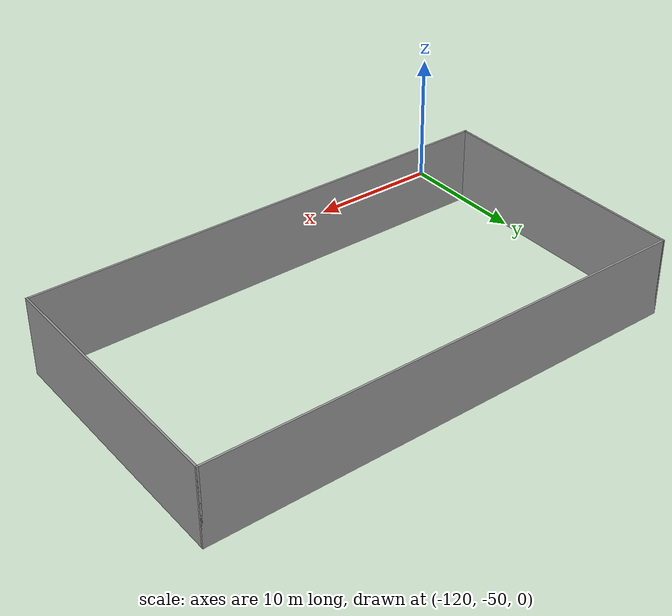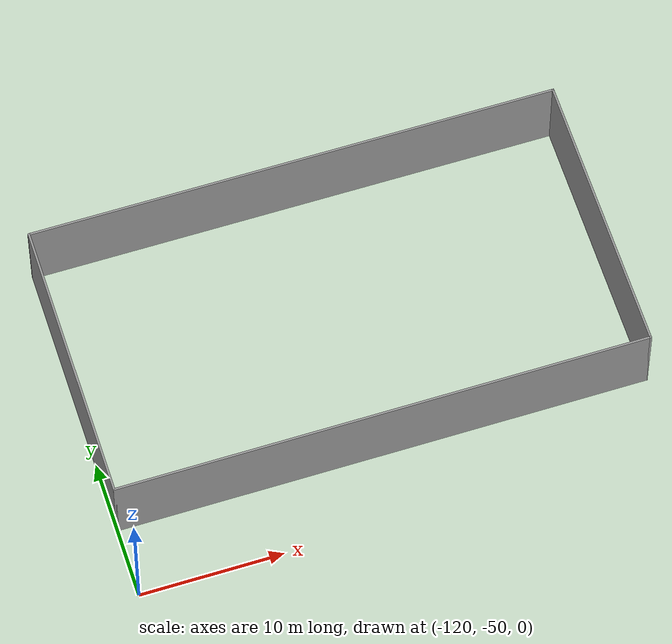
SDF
<?xml version='1.0'?>
<sdf version='1.7'>
  <model name='building'>
    <pose>-60.0375 -22.5375 0 0 -0 0</pose>
    <link name='Wall_49'>
      <collision name='Wall_49_Collision'>
        <geometry>
          <box>
            <size>0.15 0.15 6</size>
          </box>
        </geometry>
        <pose>0 0 3 0 -0 0</pose>
      </collision>
      <visual name='Wall_49_Visual'>
        <pose>0 0 3 0 -0 0</pose>
        <geometry>
          <box>
            <size>0.15 0.15 6</size>
          </box>
        </geometry>
        <material>
          <script>
            <uri>file://media/materials/scripts/gazebo.material</uri>
            <name>Gazebo/Grey</name>
          </script>
          <ambient>1 1 1 1</ambient>
        </material>
        <meta>
          <layer>0</layer>
        </meta>
      </visual>
      <pose>-59.9625 -2.4625 0 0 -0 0</pose>
    </link>
    <link name='Wall_50'>
      <collision name='Wall_50_Collision'>
        <geometry>
          <box>
            <size>20.15 0.15 6</size>
          </box>
        </geometry>
        <pose>0 0 3 0 -0 0</pose>
      </collision>
      <visual name='Wall_50_Visual'>
        <pose>0 0 3 0 -0 0</pose>
        <geometry>
          <box>
            <size>20.15 0.15 6</size>
          </box>
        </geometry>
        <material>
          <script>
            <uri>file://media/materials/scripts/gazebo.material</uri>
            <name>Gazebo/Grey</name>
          </script>
          <ambient>1 1 1 1</ambient>
        </material>
        <meta>
          <layer>0</layer>
        </meta>
      </visual>
      <pose>-59.9625 -12.4625 0 0 -0 -1.5708</pose>
    </link>
    <link name='Wall_51'>
      <collision name='Wall_51_Collision'>
        <geometry>
          <box>
            <size>37.15 0.15 6</size>
          </box>
        </geometry>
        <pose>0 0 3 0 -0 0</pose>
      </collision>
      <visual name='Wall_51_Visual'>
        <pose>0 0 3 0 -0 0</pose>
        <geometry>
          <box>
            <size>37.15 0.15 6</size>
          </box>
        </geometry>
        <material>
          <script>
            <uri>file://media/materials/scripts/gazebo.material</uri>
            <name>Gazebo/Grey</name>
          </script>
          <ambient>1 1 1 1</ambient>
        </material>
        <meta>
          <layer>0</layer>
        </meta>
      </visual>
      <pose>-41.4625 -22.4625 0 0 -0 0</pose>
    </link>
    <link name='Wall_52'>
      <collision name='Wall_52_Collision'>
        <geometry>
          <box>
            <size>20.15 0.15 6</size>
          </box>
        </geometry>
        <pose>0 0 3 0 -0 0</pose>
      </collision>
      <visual name='Wall_52_Visual'>
        <pose>0 0 3 0 -0 0</pose>
        <geometry>
          <box>
            <size>20.15 0.15 6</size>
          </box>
        </geometry>
        <material>
          <script>
            <uri>file://media/materials/scripts/gazebo.material</uri>
            <name>Gazebo/Grey</name>
          </script>
          <ambient>1 1 1 1</ambient>
        </material>
        <meta>
          <layer>0</layer>
        </meta>
      </visual>
      <pose>-22.9625 -12.4625 0 0 -0 1.5708</pose>
    </link>
    <link name='Wall_66'>
      <collision name='Wall_66_Collision'>
        <geometry>
          <box>
            <size>37.15 0.15 6</size>
          </box>
        </geometry>
        <pose>0 0 3 0 -0 0</pose>
      </collision>
      <visual name='Wall_66_Visual'>
        <pose>0 0 3 0 -0 0</pose>
        <geometry>
          <box>
            <size>37.15 0.15 6</size>
          </box>
        </geometry>
        <material>
          <script>
            <uri>file://media/materials/scripts/gazebo.material</uri>
            <name>Gazebo/Grey</name>
          </script>
          <ambient>1 1 1 1</ambient>
        </material>
        <meta>
          <layer>0</layer>
        </meta>
      </visual>
      <pose>-41.4625 -2.4625 0 0 -0 0</pose>
    </link>
    <static>1</static>
  </model>
</sdf>
